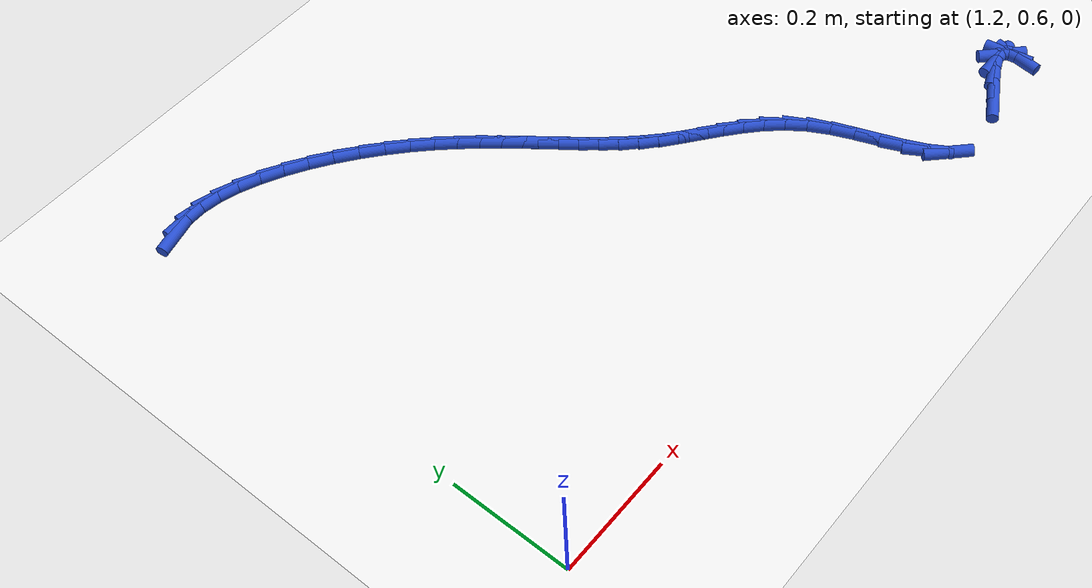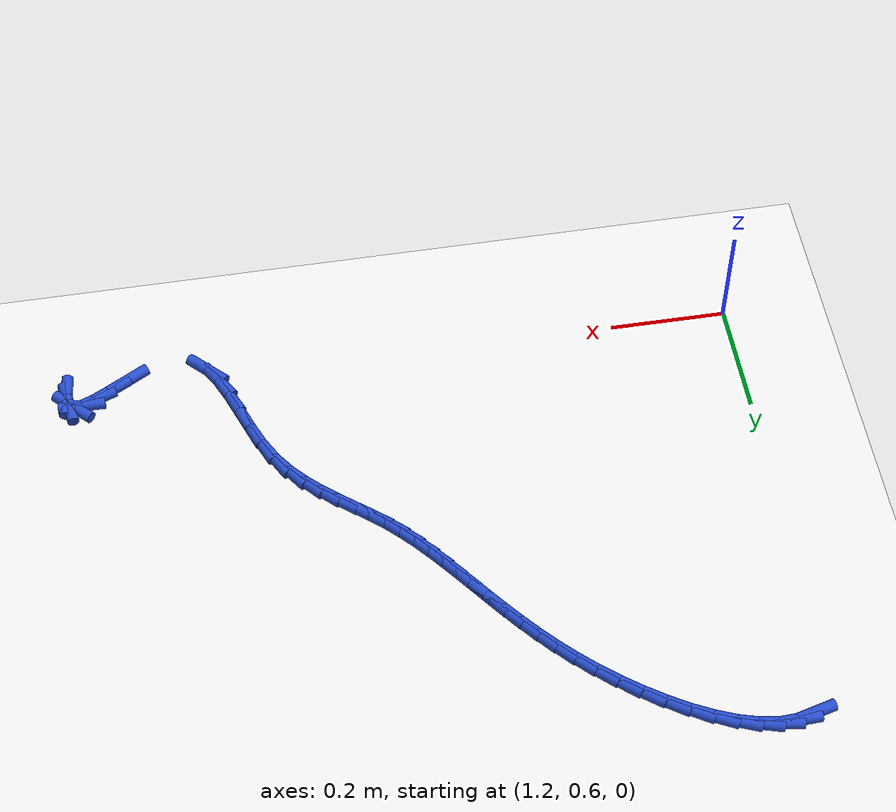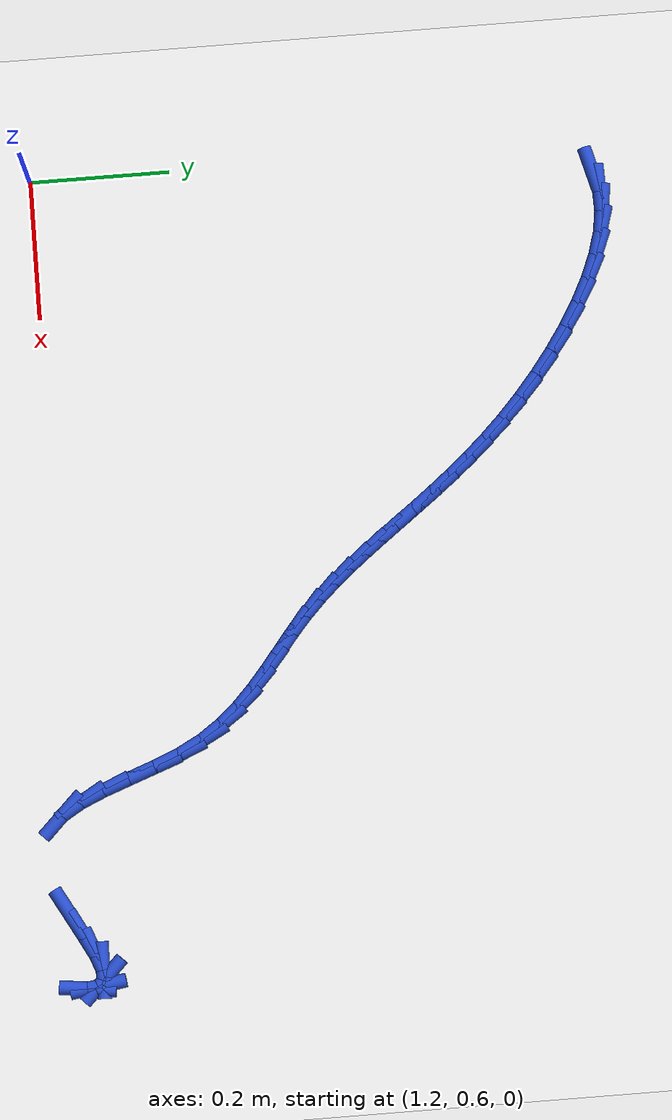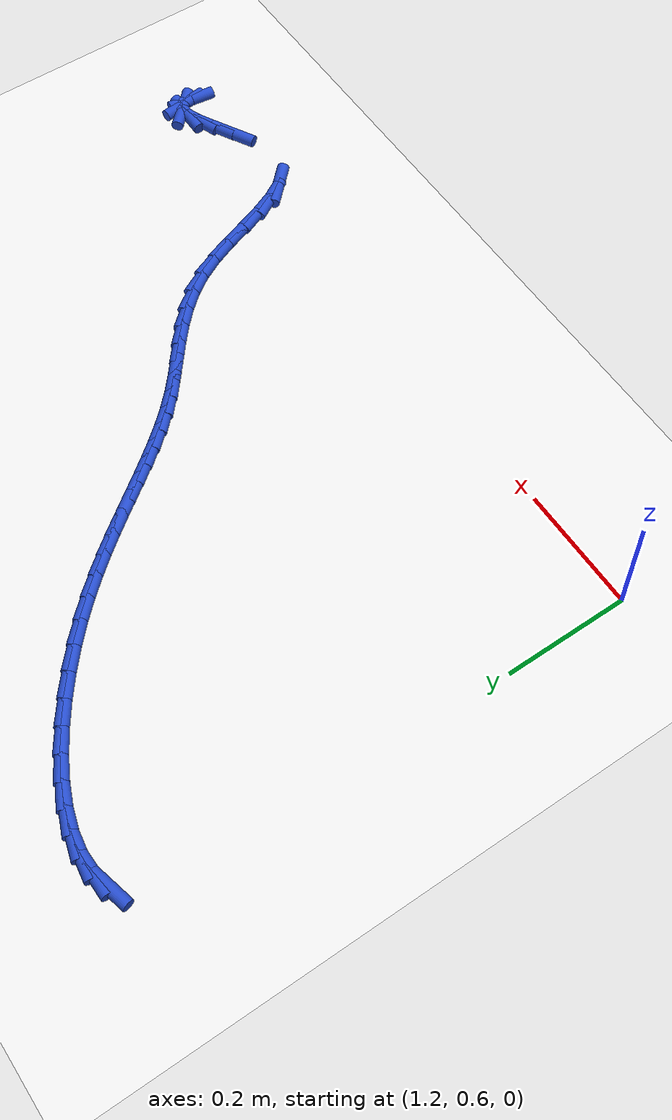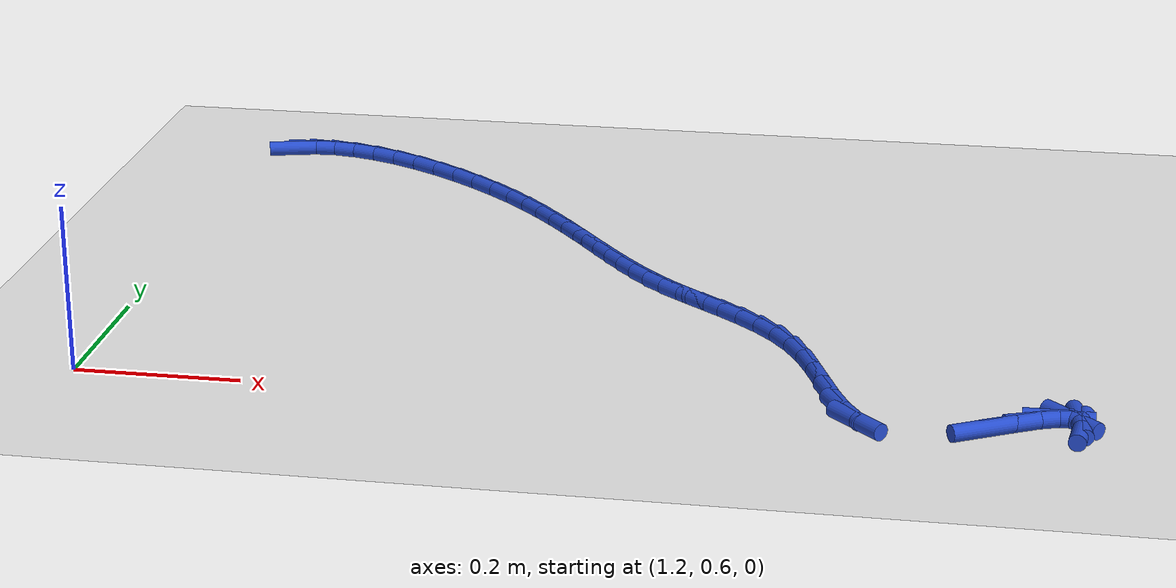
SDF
<sdf version="1.6">
 <world name="default">
  <model name="ground_plane">
   <static>1</static>
   <link name="link">
    <collision name="collision">
     <geometry><plane><normal>0 0 1</normal><size>100 100</size></plane></geometry>
     <surface><friction><ode><mu>100</mu><mu2>50</mu2></ode></friction></surface>
    </collision>
    <visual name="visual">
     <cast_shadows>0</cast_shadows>
     <geometry><plane><normal>0 0 1</normal><size>100 100</size></plane></geometry>
     <material>
      <script><uri>file://media/materials/scripts/gazebo.material</uri><name>Gazebo/WhiteGlow</name></script>
     </material>
    </visual>
   </link>
  </model>
  <model name="line">
   <link name="link_67">
    <pose>1.2531465178950798 1.4042126804977495 0.01 0 1.57 0.2498852638311327</pose>
    <collision name="collision">
     <geometry><cylinder><radius>0.01</radius><length>0.08</length></cylinder></geometry>
    </collision>
    <visual name="visual">
     <material>
      <script><name>Gazebo/Blue</name><uri>file://media/materials/scripts/gazebo.material</uri></script>
     </material>
     <geometry><cylinder><radius>0.01</radius><length>0.08</length></cylinder></geometry>
    </visual>
   </link>
   <link name="link_68">
    <pose>1.2790519286141668 1.410824251854288 0.01 0 1.57 0.023380512775224793</pose>
    <collision name="collision">
     <geometry><cylinder><radius>0.01</radius><length>0.08</length></cylinder></geometry>
    </collision>
    <visual name="visual">
     <material>
      <script><name>Gazebo/Blue</name><uri>file://media/materials/scripts/gazebo.material</uri></script>
     </material>
     <geometry><cylinder><radius>0.01</radius><length>0.08</length></cylinder></geometry>
    </visual>
   </link>
   <link name="link_69">
    <pose>1.3075484534644417 1.4114906366480802 0.01 0 1.57 -0.15227370742326052</pose>
    <collision name="collision">
     <geometry><cylinder><radius>0.01</radius><length>0.08</length></cylinder></geometry>
    </collision>
    <visual name="visual">
     <material>
      <script><name>Gazebo/Blue</name><uri>file://media/materials/scripts/gazebo.material</uri></script>
     </material>
     <geometry><cylinder><radius>0.01</radius><length>0.08</length></cylinder></geometry>
    </visual>
   </link>
   <link name="link_70">
    <pose>1.3381210712657858 1.406798911827955 0.01 0 1.57 -0.2863857306144444</pose>
    <collision name="collision">
     <geometry><cylinder><radius>0.01</radius><length>0.08</length></cylinder></geometry>
    </collision>
    <visual name="visual">
     <material>
      <script><name>Gazebo/Blue</name><uri>file://media/materials/scripts/gazebo.material</uri></script>
     </material>
     <geometry><cylinder><radius>0.01</radius><length>0.08</length></cylinder></geometry>
    </visual>
   </link>
   <link name="link_71">
    <pose>1.3702547608380768 1.3973361543427387 0.01 0 1.57 -0.3902067045855018</pose>
    <collision name="collision">
     <geometry><cylinder><radius>0.01</radius><length>0.08</length></cylinder></geometry>
    </collision>
    <visual name="visual">
     <material>
      <script><name>Gazebo/Blue</name><uri>file://media/materials/scripts/gazebo.material</uri></script>
     </material>
     <geometry><cylinder><radius>0.01</radius><length>0.08</length></cylinder></geometry>
    </visual>
   </link>
   <link name="link_72">
    <pose>1.403434501001194 1.3836894411412592 0.01 0 1.57 -0.47281776665944075</pose>
    <collision name="collision">
     <geometry><cylinder><radius>0.01</radius><length>0.08</length></cylinder></geometry>
    </collision>
    <visual name="visual">
     <material>
      <script><name>Gazebo/Blue</name><uri>file://media/materials/scripts/gazebo.material</uri></script>
     </material>
     <geometry><cylinder><radius>0.01</radius><length>0.08</length></cylinder></geometry>
    </visual>
   </link>
   <link name="link_73">
    <pose>1.4371452705750165 1.366445849172344 0.01 0 1.57 -0.5407971714114908</pose>
    <collision name="collision">
     <geometry><cylinder><radius>0.01</radius><length>0.08</length></cylinder></geometry>
    </collision>
    <visual name="visual">
     <material>
      <script><name>Gazebo/Blue</name><uri>file://media/materials/scripts/gazebo.material</uri></script>
     </material>
     <geometry><cylinder><radius>0.01</radius><length>0.08</length></cylinder></geometry>
    </visual>
   </link>
   <link name="link_74">
    <pose>1.4708720483794233 1.3461924553848201 0.01 0 1.57 -0.5988465987437451</pose>
    <collision name="collision">
     <geometry><cylinder><radius>0.01</radius><length>0.08</length></cylinder></geometry>
    </collision>
    <visual name="visual">
     <material>
      <script><name>Gazebo/Blue</name><uri>file://media/materials/scripts/gazebo.material</uri></script>
     </material>
     <geometry><cylinder><radius>0.01</radius><length>0.08</length></cylinder></geometry>
    </visual>
   </link>
   <link name="link_75">
    <pose>1.5040998132342944 1.323516336727515 0.01 0 1.57 -0.6504473510956259</pose>
    <collision name="collision">
     <geometry><cylinder><radius>0.01</radius><length>0.08</length></cylinder></geometry>
    </collision>
    <visual name="visual">
     <material>
      <script><name>Gazebo/Blue</name><uri>file://media/materials/scripts/gazebo.material</uri></script>
     </material>
     <geometry><cylinder><radius>0.01</radius><length>0.08</length></cylinder></geometry>
    </visual>
   </link>
   <link name="link_76">
    <pose>1.536313543959507 1.2990045701492556 0.01 0 1.57 -0.6983771632394717</pose>
    <collision name="collision">
     <geometry><cylinder><radius>0.01</radius><length>0.08</length></cylinder></geometry>
    </collision>
    <visual name="visual">
     <material>
      <script><name>Gazebo/Blue</name><uri>file://media/materials/scripts/gazebo.material</uri></script>
     </material>
     <geometry><cylinder><radius>0.01</radius><length>0.08</length></cylinder></geometry>
    </visual>
   </link>
   <link name="link_77">
    <pose>1.5669982193749417 1.2732442325988702 0.01 0 1.57 -0.7451015140453114</pose>
    <collision name="collision">
     <geometry><cylinder><radius>0.01</radius><length>0.08</length></cylinder></geometry>
    </collision>
    <visual name="visual">
     <material>
      <script><name>Gazebo/Blue</name><uri>file://media/materials/scripts/gazebo.material</uri></script>
     </material>
     <geometry><cylinder><radius>0.01</radius><length>0.08</length></cylinder></geometry>
    </visual>
   </link>
   <link name="link_78">
    <pose>1.5956422322331263 1.2468204685296715 0.01 0 1.57 -0.7907930289481323</pose>
    <collision name="collision">
     <geometry><cylinder><radius>0.01</radius><length>0.08</length></cylinder></geometry>
    </collision>
    <visual name="visual">
     <material>
      <script><name>Gazebo/Blue</name><uri>file://media/materials/scripts/gazebo.material</uri></script>
     </material>
     <geometry><cylinder><radius>0.01</radius><length>0.08</length></cylinder></geometry>
    </visual>
   </link>
   <link name="link_79">
    <pose>1.6220200682367079 1.2201564762176067 0.01 0 1.57 -0.8318750491835111</pose>
    <collision name="collision">
     <geometry><cylinder><radius>0.01</radius><length>0.08</length></cylinder></geometry>
    </collision>
    <visual name="visual">
     <material>
      <script><name>Gazebo/Blue</name><uri>file://media/materials/scripts/gazebo.material</uri></script>
     </material>
     <geometry><cylinder><radius>0.01</radius><length>0.08</length></cylinder></geometry>
    </visual>
   </link>
   <link name="link_80">
    <pose>1.6464040287134705 1.1933936597263117 0.01 0 1.57 -0.8668220255298266</pose>
    <collision name="collision">
     <geometry><cylinder><radius>0.01</radius><length>0.08</length></cylinder></geometry>
    </collision>
    <visual name="visual">
     <material>
      <script><name>Gazebo/Blue</name><uri>file://media/materials/scripts/gazebo.material</uri></script>
     </material>
     <geometry><cylinder><radius>0.01</radius><length>0.08</length></cylinder></geometry>
    </visual>
   </link>
   <link name="link_81">
    <pose>1.6691162903649073 1.1666451905952933 0.01 0 1.57 -0.894545945794065</pose>
    <collision name="collision">
     <geometry><cylinder><radius>0.01</radius><length>0.08</length></cylinder></geometry>
    </collision>
    <visual name="visual">
     <material>
      <script><name>Gazebo/Blue</name><uri>file://media/materials/scripts/gazebo.material</uri></script>
     </material>
     <geometry><cylinder><radius>0.01</radius><length>0.08</length></cylinder></geometry>
    </visual>
   </link>
   <link name="link_82">
    <pose>1.6904790298925152 1.1400242403640606 0.01 0 1.57 -0.9140801477576073</pose>
    <collision name="collision">
     <geometry><cylinder><radius>0.01</radius><length>0.08</length></cylinder></geometry>
    </collision>
    <visual name="visual">
     <material>
      <script><name>Gazebo/Blue</name><uri>file://media/materials/scripts/gazebo.material</uri></script>
     </material>
     <geometry><cylinder><radius>0.01</radius><length>0.08</length></cylinder></geometry>
    </visual>
   </link>
   <link name="link_83">
    <pose>1.710814423997786 1.1136439805721197 0.01 0 1.57 -0.9245852969458827</pose>
    <collision name="collision">
     <geometry><cylinder><radius>0.01</radius><length>0.08</length></cylinder></geometry>
    </collision>
    <visual name="visual">
     <material>
      <script><name>Gazebo/Blue</name><uri>file://media/materials/scripts/gazebo.material</uri></script>
     </material>
     <geometry><cylinder><radius>0.01</radius><length>0.08</length></cylinder></geometry>
    </visual>
   </link>
   <link name="link_84">
    <pose>1.7304446493822163 1.08761758275898 0.01 0 1.57 -0.9253522137380359</pose>
    <collision name="collision">
     <geometry><cylinder><radius>0.01</radius><length>0.08</length></cylinder></geometry>
    </collision>
    <visual name="visual">
     <material>
      <script><name>Gazebo/Blue</name><uri>file://media/materials/scripts/gazebo.material</uri></script>
     </material>
     <geometry><cylinder><radius>0.01</radius><length>0.08</length></cylinder></geometry>
    </visual>
   </link>
   <link name="link_85">
    <pose>1.749691882747299 1.0620582184641487 0.01 0 1.57 -0.9158133650983236</pose>
    <collision name="collision">
     <geometry><cylinder><radius>0.01</radius><length>0.08</length></cylinder></geometry>
    </collision>
    <visual name="visual">
     <material>
      <script><name>Gazebo/Blue</name><uri>file://media/materials/scripts/gazebo.material</uri></script>
     </material>
     <geometry><cylinder><radius>0.01</radius><length>0.08</length></cylinder></geometry>
    </visual>
   </link>
   <link name="link_86">
    <pose>1.7688783007945292 1.0370790592271328 0.01 0 1.57 -0.8955746769448363</pose>
    <collision name="collision">
     <geometry><cylinder><radius>0.01</radius><length>0.08</length></cylinder></geometry>
    </collision>
    <visual name="visual">
     <material>
      <script><name>Gazebo/Blue</name><uri>file://media/materials/scripts/gazebo.material</uri></script>
     </material>
     <geometry><cylinder><radius>0.01</radius><length>0.08</length></cylinder></geometry>
    </visual>
   </link>
   <link name="link_87">
    <pose>1.7883260802254013 1.0127932765874412 0.01 0 1.57 -0.8644761535255147</pose>
    <collision name="collision">
     <geometry><cylinder><radius>0.01</radius><length>0.08</length></cylinder></geometry>
    </collision>
    <visual name="visual">
     <material>
      <script><name>Gazebo/Blue</name><uri>file://media/materials/scripts/gazebo.material</uri></script>
     </material>
     <geometry><cylinder><radius>0.01</radius><length>0.08</length></cylinder></geometry>
    </visual>
   </link>
   <link name="link_88">
    <pose>1.8083573977414094 0.9893140420845814 0.01 0 1.57 -0.822682287166682</pose>
    <collision name="collision">
     <geometry><cylinder><radius>0.01</radius><length>0.08</length></cylinder></geometry>
    </collision>
    <visual name="visual">
     <material>
      <script><name>Gazebo/Blue</name><uri>file://media/materials/scripts/gazebo.material</uri></script>
     </material>
     <geometry><cylinder><radius>0.01</radius><length>0.08</length></cylinder></geometry>
    </visual>
   </link>
   <link name="link_89">
    <pose>1.8292944300440483 0.9667545272580608 0.01 0 1.57 -0.7707899654025782</pose>
    <collision name="collision">
     <geometry><cylinder><radius>0.01</radius><length>0.08</length></cylinder></geometry>
    </collision>
    <visual name="visual">
     <material>
      <script><name>Gazebo/Blue</name><uri>file://media/materials/scripts/gazebo.material</uri></script>
     </material>
     <geometry><cylinder><radius>0.01</radius><length>0.08</length></cylinder></geometry>
    </visual>
   </link>
   <link name="link_90">
    <pose>1.8514593538348125 0.9452279036473872 0.01 0 1.57 -0.713066124969618</pose>
    <collision name="collision">
     <geometry><cylinder><radius>0.01</radius><length>0.08</length></cylinder></geometry>
    </collision>
    <visual name="visual">
     <material>
      <script><name>Gazebo/Blue</name><uri>file://media/materials/scripts/gazebo.material</uri></script>
     </material>
     <geometry><cylinder><radius>0.01</radius><length>0.08</length></cylinder></geometry>
    </visual>
   </link>
   <link name="link_91">
    <pose>1.8751015659429686 0.9247803663625813 0.01 0 1.57 -0.6765788130207413</pose>
    <collision name="collision">
     <geometry><cylinder><radius>0.01</radius><length>0.08</length></cylinder></geometry>
    </collision>
    <visual name="visual">
     <material>
      <script><name>Gazebo/Blue</name><uri>file://media/materials/scripts/gazebo.material</uri></script>
     </material>
     <geometry><cylinder><radius>0.01</radius><length>0.08</length></cylinder></geometry>
    </visual>
   </link>
   <link name="link_92">
    <pose>1.899861485021578 0.9048976920541428 0.01 0 1.57 -0.6732800599838428</pose>
    <collision name="collision">
     <geometry><cylinder><radius>0.01</radius><length>0.08</length></cylinder></geometry>
    </collision>
    <visual name="visual">
     <material>
      <script><name>Gazebo/Blue</name><uri>file://media/materials/scripts/gazebo.material</uri></script>
     </material>
     <geometry><cylinder><radius>0.01</radius><length>0.08</length></cylinder></geometry>
    </visual>
   </link>
   <link name="link_93">
    <pose>1.9250760516361756 0.8847863785265391 0.01 0 1.57 -0.7017515779665069</pose>
    <collision name="collision">
     <geometry><cylinder><radius>0.01</radius><length>0.08</length></cylinder></geometry>
    </collision>
    <visual name="visual">
     <material>
      <script><name>Gazebo/Blue</name><uri>file://media/materials/scripts/gazebo.material</uri></script>
     </material>
     <geometry><cylinder><radius>0.01</radius><length>0.08</length></cylinder></geometry>
    </visual>
   </link>
   <link name="link_94">
    <pose>1.9500799840331027 0.863650878472034 0.01 0 1.57 -0.760494613398068</pose>
    <collision name="collision">
     <geometry><cylinder><radius>0.01</radius><length>0.08</length></cylinder></geometry>
    </collision>
    <visual name="visual">
     <material>
      <script><name>Gazebo/Blue</name><uri>file://media/materials/scripts/gazebo.material</uri></script>
     </material>
     <geometry><cylinder><radius>0.01</radius><length>0.08</length></cylinder></geometry>
    </visual>
   </link>
   <link name="link_95">
    <pose>1.9742080004586995 0.8406956445828923 0.01 0 1.57 -0.8472763246064314</pose>
    <collision name="collision">
     <geometry><cylinder><radius>0.01</radius><length>0.08</length></cylinder></geometry>
    </collision>
    <visual name="visual">
     <material>
      <script><name>Gazebo/Blue</name><uri>file://media/materials/scripts/gazebo.material</uri></script>
     </material>
     <geometry><cylinder><radius>0.01</radius><length>0.08</length></cylinder></geometry>
    </visual>
   </link>
   <link name="link_96">
    <pose>1.9967948191593063 0.8151251295513783 0.01 0 1.57 -0.957910735494842</pose>
    <collision name="collision">
     <geometry><cylinder><radius>0.01</radius><length>0.08</length></cylinder></geometry>
    </collision>
    <visual name="visual">
     <material>
      <script><name>Gazebo/Blue</name><uri>file://media/materials/scripts/gazebo.material</uri></script>
     </material>
     <geometry><cylinder><radius>0.01</radius><length>0.08</length></cylinder></geometry>
    </visual>
   </link>
   <link name="link_97">
    <pose>2.017175158381266 0.7861437860697564 0.01 0 1.57 -1.083049151876159</pose>
    <collision name="collision">
     <geometry><cylinder><radius>0.01</radius><length>0.08</length></cylinder></geometry>
    </collision>
    <visual name="visual">
     <material>
      <script><name>Gazebo/Blue</name><uri>file://media/materials/scripts/gazebo.material</uri></script>
     </material>
     <geometry><cylinder><radius>0.01</radius><length>0.08</length></cylinder></geometry>
    </visual>
   </link>
   <link name="link_98">
    <pose>2.034735401474383 0.7530423457027412 0.01 0 1.57 -1.1784516894508468</pose>
    <collision name="collision">
     <geometry><cylinder><radius>0.01</radius><length>0.08</length></cylinder></geometry>
    </collision>
    <visual name="visual">
     <material>
      <script><name>Gazebo/Blue</name><uri>file://media/materials/scripts/gazebo.material</uri></script>
     </material>
     <geometry><cylinder><radius>0.01</radius><length>0.08</length></cylinder></geometry>
    </visual>
   </link>
   <link name="link_99">
    <pose>2.0497898730637165 0.7166611687113469 0.01 0 1.57 -1.2211559810461274</pose>
    <collision name="collision">
     <geometry><cylinder><radius>0.01</radius><length>0.08</length></cylinder></geometry>
    </collision>
    <visual name="visual">
     <material>
      <script><name>Gazebo/Blue</name><uri>file://media/materials/scripts/gazebo.material</uri></script>
     </material>
     <geometry><cylinder><radius>0.01</radius><length>0.08</length></cylinder></geometry>
    </visual>
   </link>
   <link name="link_100">
    <pose>2.0634557817265 0.6791814028021735 0.01 0 1.57 -1.2171317183623518</pose>
    <collision name="collision">
     <geometry><cylinder><radius>0.01</radius><length>0.08</length></cylinder></geometry>
    </collision>
    <visual name="visual">
     <material>
      <script><name>Gazebo/Blue</name><uri>file://media/materials/scripts/gazebo.material</uri></script>
     </material>
     <geometry><cylinder><radius>0.01</radius><length>0.08</length></cylinder></geometry>
    </visual>
   </link>
   <link name="link_101">
    <pose>2.0768768252656913 0.642828431740088 0.01 0 1.57 -1.1613902887448193</pose>
    <collision name="collision">
     <geometry><cylinder><radius>0.01</radius><length>0.08</length></cylinder></geometry>
    </collision>
    <visual name="visual">
     <material>
      <script><name>Gazebo/Blue</name><uri>file://media/materials/scripts/gazebo.material</uri></script>
     </material>
     <geometry><cylinder><radius>0.01</radius><length>0.08</length></cylinder></geometry>
    </visual>
   </link>
   <link name="link_102">
    <pose>2.091196701484248 0.6098276392899584 0.01 0 1.57 -1.0328346541824103</pose>
    <collision name="collision">
     <geometry><cylinder><radius>0.01</radius><length>0.08</length></cylinder></geometry>
    </collision>
    <visual name="visual">
     <material>
      <script><name>Gazebo/Blue</name><uri>file://media/materials/scripts/gazebo.material</uri></script>
     </material>
     <geometry><cylinder><radius>0.01</radius><length>0.08</length></cylinder></geometry>
    </visual>
   </link>
   <link name="link_103">
    <pose>2.107559108185126 0.5824044092166534 0.01 0 1.57 -0.7872273909462051</pose>
    <collision name="collision">
     <geometry><cylinder><radius>0.01</radius><length>0.08</length></cylinder></geometry>
    </collision>
    <visual name="visual">
     <material>
      <script><name>Gazebo/Blue</name><uri>file://media/materials/scripts/gazebo.material</uri></script>
     </material>
     <geometry><cylinder><radius>0.01</radius><length>0.08</length></cylinder></geometry>
    </visual>
   </link>
   <link name="link_108">
    <pose>2.2459996803602835 0.582914123820581 0.01 0 1.57 0.5033140327529751</pose>
    <collision name="collision">
     <geometry><cylinder><radius>0.01</radius><length>0.08</length></cylinder></geometry>
    </collision>
    <visual name="visual">
     <material>
      <script><name>Gazebo/Blue</name><uri>file://media/materials/scripts/gazebo.material</uri></script>
     </material>
     <geometry><cylinder><radius>0.01</radius><length>0.08</length></cylinder></geometry>
    </visual>
   </link>
   <link name="link_109">
    <pose>2.2780105067219734 0.6005397138985215 0.01 0 1.57 0.4863267810683759</pose>
    <collision name="collision">
     <geometry><cylinder><radius>0.01</radius><length>0.08</length></cylinder></geometry>
    </collision>
    <visual name="visual">
     <material>
      <script><name>Gazebo/Blue</name><uri>file://media/materials/scripts/gazebo.material</uri></script>
     </material>
     <geometry><cylinder><radius>0.01</radius><length>0.08</length></cylinder></geometry>
    </visual>
   </link>
   <link name="link_110">
    <pose>2.305995999145467 0.6153350586013445 0.01 0 1.57 0.3590206297646207</pose>
    <collision name="collision">
     <geometry><cylinder><radius>0.01</radius><length>0.08</length></cylinder></geometry>
    </collision>
    <visual name="visual">
     <material>
      <script><name>Gazebo/Blue</name><uri>file://media/materials/scripts/gazebo.material</uri></script>
     </material>
     <geometry><cylinder><radius>0.01</radius><length>0.08</length></cylinder></geometry>
    </visual>
   </link>
   <link name="link_111">
    <pose>2.3275315384217694 0.623417026404306 0.01 0 1.57 -0.009632705717809366</pose>
    <collision name="collision">
     <geometry><cylinder><radius>0.01</radius><length>0.08</length></cylinder></geometry>
    </collision>
    <visual name="visual">
     <material>
      <script><name>Gazebo/Blue</name><uri>file://media/materials/scripts/gazebo.material</uri></script>
     </material>
     <geometry><cylinder><radius>0.01</radius><length>0.08</length></cylinder></geometry>
    </visual>
   </link>
   <link name="link_112">
    <pose>2.3418759052044456 0.6232788470665119 0.01 0 1.57 -0.7801117867538813</pose>
    <collision name="collision">
     <geometry><cylinder><radius>0.01</radius><length>0.08</length></cylinder></geometry>
    </collision>
    <visual name="visual">
     <material>
      <script><name>Gazebo/Blue</name><uri>file://media/materials/scripts/gazebo.material</uri></script>
     </material>
     <geometry><cylinder><radius>0.01</radius><length>0.08</length></cylinder></geometry>
    </visual>
   </link>
   <link name="link_113">
    <pose>2.3497540910300727 0.6154835181151591 0.01 0 1.57 -1.424350268342304</pose>
    <collision name="collision">
     <geometry><cylinder><radius>0.01</radius><length>0.08</length></cylinder></geometry>
    </collision>
    <visual name="visual">
     <material>
      <script><name>Gazebo/Blue</name><uri>file://media/materials/scripts/gazebo.material</uri></script>
     </material>
     <geometry><cylinder><radius>0.01</radius><length>0.08</length></cylinder></geometry>
    </visual>
   </link>
   <link name="link_114">
    <pose>2.351940111881664 0.6006632421421916 0.01 0 1.57 1.4427066096240455</pose>
    <collision name="collision">
     <geometry><cylinder><radius>0.01</radius><length>0.08</length></cylinder></geometry>
    </collision>
    <visual name="visual">
     <material>
      <script><name>Gazebo/Blue</name><uri>file://media/materials/scripts/gazebo.material</uri></script>
     </material>
     <geometry><cylinder><radius>0.01</radius><length>0.08</length></cylinder></geometry>
    </visual>
   </link>
  </model>
 </world>
</sdf>
